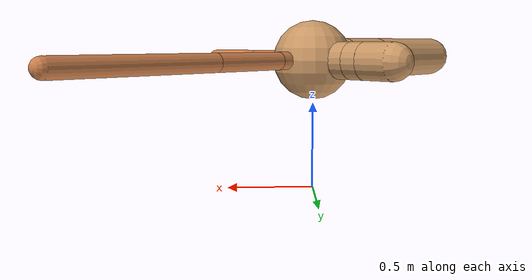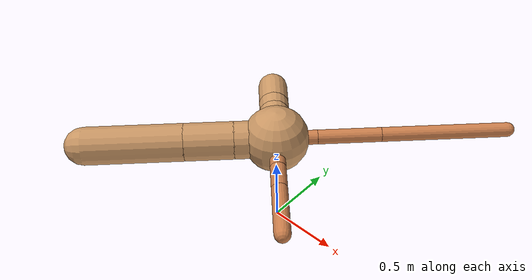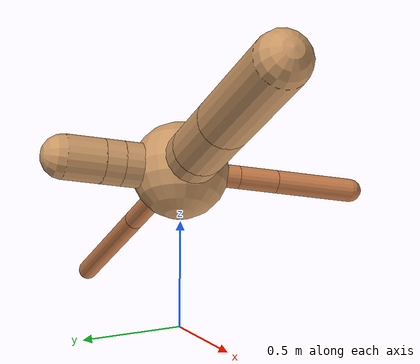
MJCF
<?xml version="1.0" ?>
<mujoco model="ant">

	<compiler angle="degree" coordinate="local" inertiafromgeom="true"/>

	<option integrator="RK4" timestep="0.01"/>

	<custom>

		<numeric data="0.0 0.0 0.55 1.0 0.0 0.0 0.0 0.0 1.0 0.0 -1.0 0.0 -1.0 0.0 1.0" name="init_qpos"/>

	</custom>

	<default>

		<joint armature="1" damping="1" limited="true"/>

		<geom conaffinity="0" condim="3" density="5.0" friction="1.5 0.1 0.1" margin="0.01" rgba="0.8 0.6 0.4 1"/>

	</default>

	<worldbody>

		<body name="torso" pos="0 0 0.75">

			<geom name="torso_geom" pos="0 0 0" size="0.22706191569553597" type="sphere"/>

			<!--joint armature="0" damping="0" limited="false" margin="0.01" name="root" pos="0 0 0" type="free"/-->

			<body name="front_left_leg" pos="0 0 0">

				<geom fromto="0 0 0 0.2 0.2 0" name="aux_1_geom" size="0.04946593135704342" type="capsule" rgba=".8 .5 .3 1"/>

				<body name="aux_1" pos="0.2 0.2 0">

					<joint axis="0 0 1" name="hip_1" pos="0.0 0.0 0.0" range="-40 40" type="hinge"/>

					<geom fromto="0 0 0 0.3090782659093123 0.3090782659093123 0" name="left_leg_geom" size="0.04946593135704342" type="capsule" rgba=".8 .5 .3 1"/>

					<body pos="0.3090782659093123 0.3090782659093123 0" name="front_left_foot">

						<joint axis="-1 1 0" name="ankle_1" pos="0.0 0.0 0.0" range="30 100" type="hinge"/>

						<geom fromto="0 0 0 0.6181565318186246 0.6181565318186246 0" name="left_ankle_geom" size="0.04946593135704342" type="capsule" rgba=".8 .5 .3 1"/>

					</body>

				</body>

			</body>

			<body name="front_right_leg" pos="0 0 0">

				<geom fromto="0 0 0 -0.2 0.2 0" name="aux_2_geom" size="0.1052729400277138" type="capsule"/>

				<body name="aux_2" pos="-0.2 0.2 0">

					<joint axis="0 0 1" name="hip_2" pos="0.0 0.0 0.0" range="-40 40" type="hinge"/>

					<geom fromto="0 0 0 -0.06524827587874849 0.06524827587874849 0" name="right_leg_geom" size="0.1052729400277138" type="capsule"/>

					<body pos="-0.06524827587874849 0.06524827587874849 0" name="front_right_foot">

						<joint axis="1 1 0" name="ankle_2" pos="0.0 0.0 0.0" range="-100 -30" type="hinge"/>

						<geom fromto="0 0 0 -0.13049655175749697 0.13049655175749697 0" name="right_ankle_geom" size="0.1052729400277138" type="capsule"/>

					</body>

				</body>

			</body>

			<body name="left_back_leg" pos="0 0 0">

				<geom fromto="0 0 0 -0.2 -0.2 0" name="aux_3_geom" size="0.12951716458698298" type="capsule"/>

				<body name="aux_3" pos="-0.2 -0.2 0">

					<joint axis="0 0 1" name="hip_3" pos="0.0 0.0 0.0" range="-40 40" type="hinge"/>

					<geom fromto="0 0 0 -0.2384475395736114 -0.2384475395736114 0" name="back_leg_geom" size="0.12951716458698298" type="capsule"/>

					<body pos="-0.2384475395736114 -0.2384475395736114 0" name="left_back_foot">

						<joint axis="-1 1 0" name="ankle_3" pos="0.0 0.0 0.0" range="-100 -30" type="hinge"/>

						<geom fromto="0 0 0 -0.4768950791472228 -0.4768950791472228 0" name="third_ankle_geom" size="0.12951716458698298" type="capsule"/>

					</body>

				</body>

			</body>

			<body name="right_back_leg" pos="0 0 0">

				<geom fromto="0 0 0 0.2 -0.2 0" name="aux_4_geom" size="0.05396699591367977" type="capsule" rgba=".8 .5 .3 1"/>

				<body name="aux_4" pos="0.2 -0.2 0">

					<joint axis="0 0 1" name="hip_4" pos="0.0 0.0 0.0" range="-40 40" type="hinge"/>

					<geom fromto="0 0 0 0.1330813160234909 -0.1330813160234909 0" name="rightback_leg_geom" size="0.05396699591367977" type="capsule" rgba=".8 .5 .3 1"/>

					<body pos="0.1330813160234909 -0.1330813160234909 0" name="right_back_foot">

						<joint axis="1 1 0" name="ankle_4" pos="0.0 0.0 0.0" range="30 100" type="hinge"/>

						<geom fromto="0 0 0 0.2661626320469818 -0.2661626320469818 0" name="fourth_ankle_geom" size="0.05396699591367977" type="capsule" rgba=".8 .5 .3 1"/>

					</body>

				</body>

			</body>

		</body>

	</worldbody>

	<actuator>

		<motor ctrllimited="true" ctrlrange="-1.0 1.0" joint="hip_4" gear="150"/>

		<motor ctrllimited="true" ctrlrange="-1.0 1.0" joint="ankle_4" gear="150"/>

		<motor ctrllimited="true" ctrlrange="-1.0 1.0" joint="hip_1" gear="150"/>

		<motor ctrllimited="true" ctrlrange="-1.0 1.0" joint="ankle_1" gear="150"/>

		<motor ctrllimited="true" ctrlrange="-1.0 1.0" joint="hip_2" gear="150"/>

		<motor ctrllimited="true" ctrlrange="-1.0 1.0" joint="ankle_2" gear="150"/>

		<motor ctrllimited="true" ctrlrange="-1.0 1.0" joint="hip_3" gear="150"/>

		<motor ctrllimited="true" ctrlrange="-1.0 1.0" joint="ankle_3" gear="150"/>

	</actuator>

</mujoco>
